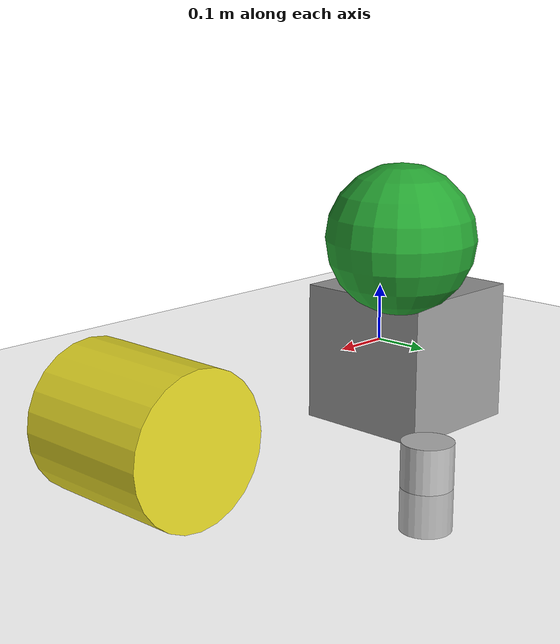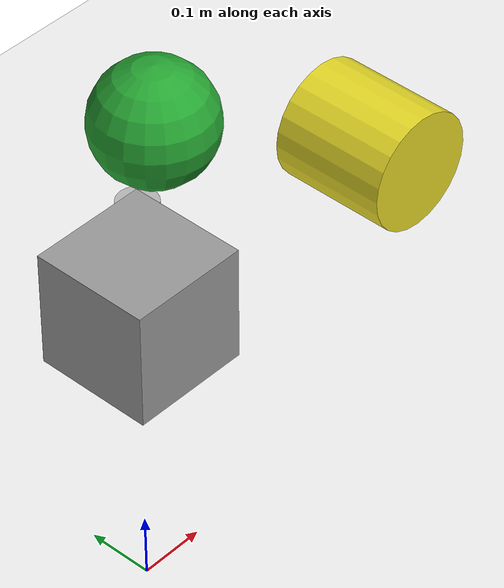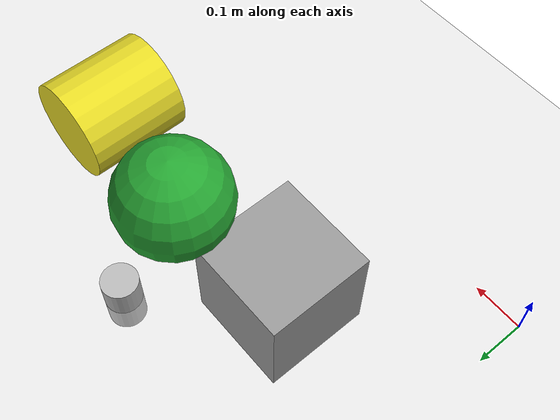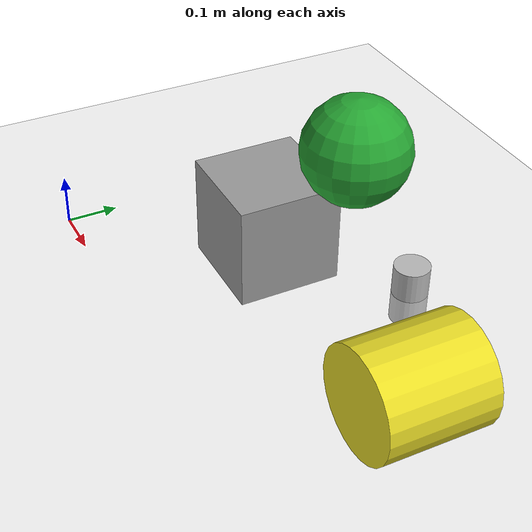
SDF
<?xml version="1.0" ?>
<sdf version="1.5">
  <world name="default">
    <!-- Define the update rates!  The max_step_size is the dt for -->
    <!-- each simulation step (1ms).  The real_time_update_rate is -->
    <!-- the max number of steps per actual second (1000).         -->
    <!-- So this will run at MOST at realtime!                     -->
    <physics type="ode">
      <max_step_size>0.001</max_step_size>
      <real_time_update_rate>1000</real_time_update_rate>
    </physics>

    <!-- Include the publisher, so ROS can track objects!     -->
    <!-- Note the update rate, being the rate at which Gazebo -->
    <!-- will send the state (pose and twist) of each object, -->
    <!-- is given with respect to simulated time.  So this is -->
    <!-- every 0.02 simulated second (see rates above).       -->
    <plugin name="gazebo_ros_state" filename="libgazebo_ros_state.so">
      <ros>
        <namespace>/gazebo</namespace>
      </ros>
      <update_rate>50.0</update_rate>
    </plugin>

    <!-- Gravity :) -->
    <gravity>0.0 0.0 -9.81</gravity>

    <!-- A global light source -->
    <include>
      <uri>model://sun</uri>
    </include>

    <!-- A NON-BOUNCY ground plane -->
    <include>
      <uri>model://ground_plane</uri>
    </include>

    <!-- You can add other models.  Either indirectly (including -->
    <include>
      <pose>0.5 0.5 0 0 0 0</pose>
      <uri>model://beer</uri>
    </include>

    <model name="box">
      <pose>0.3 0.3 0.1 0 0 0</pose>
      <link name="link">
	<inertial>
          <mass>1.000</mass>
          <inertia>
            <ixx>0.006667</ixx>
            <iyy>0.006667</iyy>
            <izz>0.006667</izz>
            <ixy>0</ixy>
            <ixz>0</ixz>
            <iyz>0</iyz>
          </inertia>
	</inertial>
        <collision name="collision">
          <geometry>
            <box>
              <size>0.2 0.2 0.2</size>
            </box>
          </geometry>
        </collision>
        <visual name="visual">
          <geometry>
            <box>
              <size>0.2 0.2 0.2</size>
            </box>
          </geometry>
	  <material>
            <script>
              <name>Gazebo/Gray</name>
              <uri>file://media/materials/scripts/gazebo.material</uri>
            </script>
	  </material>
        </visual>
      </link>
    </model>

    <model name="sphere">
      <pose>0.44 0.4 0.3 0 0 0</pose>
      <link name="link">
	<inertial>
          <mass>1.000</mass>
          <inertia>
            <ixx>0.004</ixx>
            <iyy>0.004</iyy>
            <izz>0.004</izz>
            <ixy>0</ixy>
            <ixz>0</ixz>
            <iyz>0</iyz>
          </inertia>
	</inertial>
        <collision name="collision">
          <geometry>
            <sphere>
              <radius>0.1</radius>
            </sphere>
          </geometry>
        </collision>
        <visual name="visual">
          <geometry>
            <sphere>
              <radius>0.1</radius>
            </sphere>
          </geometry>
	  <material>
            <script>
              <name>Gazebo/Green</name>
              <uri>file://media/materials/scripts/gazebo.material</uri>
            </script>
	  </material>
        </visual>
      </link>
    </model>

    <model name="cylinder">
      <pose>0.8 0.3 0.1 1.5707 0 0</pose>
      <link name="link">
	<inertial>
          <mass>1.000</mass>
          <inertia>
            <ixx>0.005833</ixx>
            <iyy>0.005833</iyy>
            <izz>0.005</izz>
            <ixy>0</ixy>
            <ixz>0</ixz>
            <iyz>0</iyz>
          </inertia>
	</inertial>
        <collision name="collision">
          <geometry>
            <cylinder>
              <radius>0.1</radius>
              <length>0.2</length>
            </cylinder>
          </geometry>
        </collision>
        <visual name="visual">
          <geometry>
            <cylinder>
              <radius>0.1</radius>
              <length>0.2</length>
            </cylinder>
          </geometry>
	  <material>
            <script>
              <name>Gazebo/Yellow</name>
              <uri>file://media/materials/scripts/gazebo.material</uri>
            </script>
	  </material>
        </visual>
      </link>
    </model>

  </world>
</sdf>

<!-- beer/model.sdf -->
<sdf version='1.4'>
  <model name="beer">
    <link name='link'>
      <pose>0 0 0 0 0 0</pose>
      <inertial>
        <mass>0.390</mass>
        <inertia>
          <ixx>0.00058</ixx>
          <ixy>0</ixy>
          <ixz>0</ixz>
          <iyy>0.00058</iyy>
          <iyz>0</iyz>
          <izz>0.00025</izz>
        </inertia>
      </inertial>
      <collision name='collision'>
        <geometry>
          <cylinder>
            <radius>0.03500</radius>
            <length>0.12000</length>
          </cylinder>
        </geometry>
      </collision>

      <visual name='visual'>
        <geometry>
          <cylinder>
            <radius>0.03500</radius>
            <length>0.12000</length>
          </cylinder>
        </geometry>

        <material>
          <script>
            <uri>model://beer/materials/scripts</uri>
            <uri>model://beer/materials/textures</uri>
            <name>Beer/Diffuse</name>
          </script>
        </material>
      </visual>
    </link>
  </model>
</sdf>
